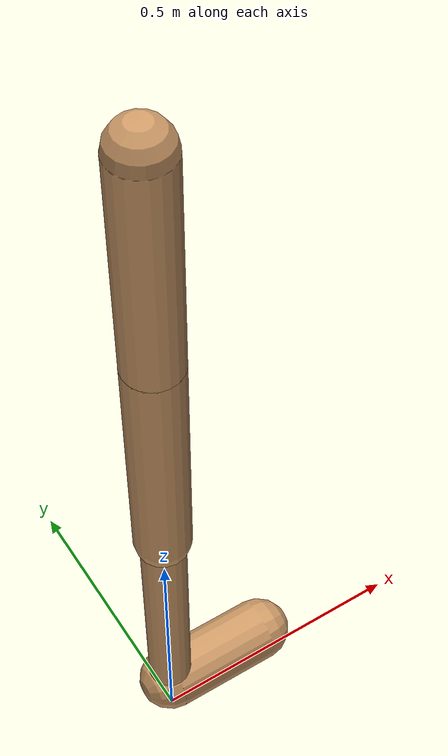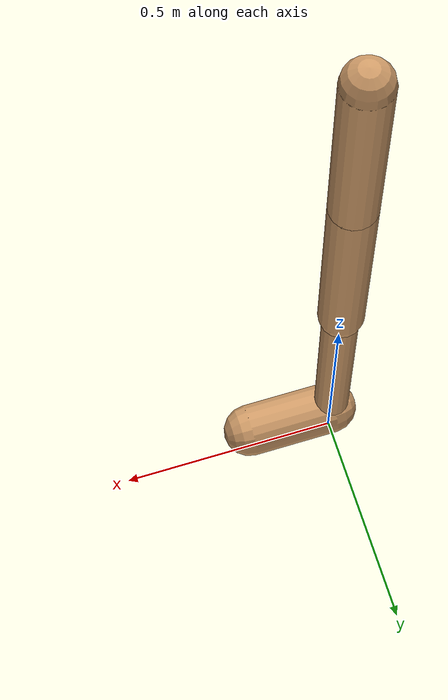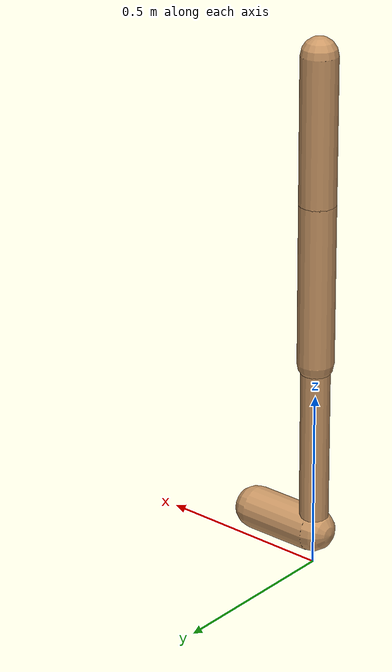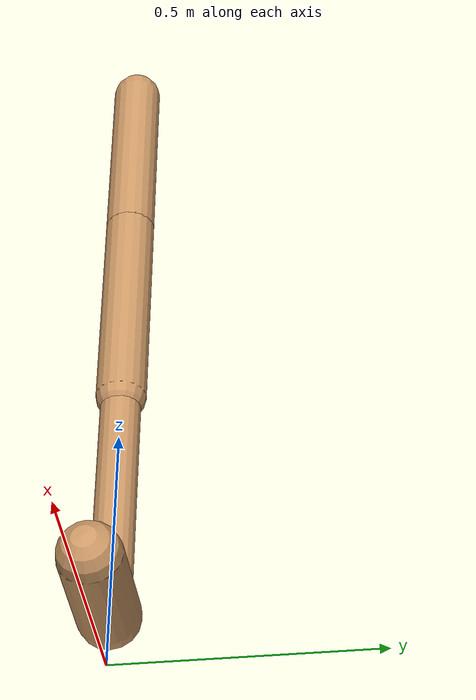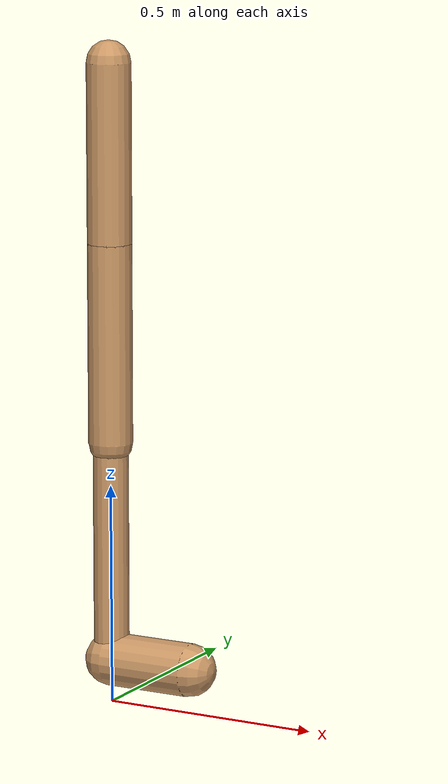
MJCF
<?xml version='1.0' encoding='utf-8'?>
<mujoco model="Walker2d">
  <compiler angle="radian" inertiafromgeom="true" />

  <default>
    <joint armature="0.01" damping="0.1" limited="true" />
    <geom conaffinity="0" condim="3" contype="1" density="1000"
          friction="0.7 0.1 0.1" rgba="0.8 0.6 0.4 1" />
  </default>

  <option integrator="RK4" />

  <worldbody>
    <body name="base" pos="0 0 1.25">
      <!-- IMU site for gyro/accelerometer sensors (at body origin) -->
      <site name="imu" pos="0 0 0" />

      <!-- Body-mounted camera (pointing +X = forward for Walker2d) -->
      <camera name="camera_1_cam" fovy="90.0"
              pos="0 0 0.20" xyaxes="0 -1 0 0 0 1" />

      <!-- Root joints: free 2D movement (slide X, slide Z, rotate Y) -->
      <joint armature="0" axis="1 0 0" damping="0" limited="false"
             name="rootx" pos="0 0 0" stiffness="0" type="slide" />
      <joint armature="0" axis="0 0 1" damping="0" limited="false"
             name="rootz" pos="0 0 0" ref="1.25" stiffness="0" type="slide" />
      <joint armature="0" axis="0 1 0" damping="0" limited="false"
             name="rooty" pos="0 0 0" stiffness="0" type="hinge" />

      <geom friction="0.9" fromto="0 0 0.20 0 0 -0.20"
            name="torso_geom" size="0.05" type="capsule" />

      <!-- Right leg -->
      <body name="thigh" pos="0 0 -0.20">
        <joint axis="0 -1 0" name="thigh_joint" pos="0 0 0"
               range="-2.618 0" type="hinge" />
        <geom friction="0.9" fromto="0 0 0 0 0 -0.45"
              name="thigh_geom" size="0.05" type="capsule" />

        <body name="leg" pos="0 0 -0.70">
          <joint axis="0 -1 0" name="leg_joint" pos="0 0 0.25"
                 range="-2.618 0" type="hinge" />
          <geom friction="0.9" fromto="0 0 0.25 0 0 -0.25"
                name="leg_geom" size="0.04" type="capsule" />

          <body name="foot" pos="0.2 0 -0.25">
            <joint axis="0 -1 0" name="foot_joint" pos="-0.2 0 0"
                   range="-0.785 0.785" type="hinge" />
            <geom friction="0.9" fromto="-0.2 0 0 0 0 0"
                  name="right_foot" size="0.06" type="capsule" />
          </body>
        </body>
      </body>

      <!-- Left leg -->
      <body name="thigh_left" pos="0 0 -0.20">
        <joint axis="0 -1 0" name="thigh_left_joint" pos="0 0 0"
               range="-2.618 0" type="hinge" />
        <geom friction="0.9" fromto="0 0 0 0 0 -0.45"
              name="thigh_left_geom" size="0.05" type="capsule" />

        <body name="leg_left" pos="0 0 -0.70">
          <joint axis="0 -1 0" name="leg_left_joint" pos="0 0 0.25"
                 range="-2.618 0" type="hinge" />
          <geom friction="0.9" fromto="0 0 0.25 0 0 -0.25"
                name="leg_left_geom" size="0.04" type="capsule" />

          <body name="foot_left" pos="0.2 0 -0.25">
            <joint axis="0 -1 0" name="foot_left_joint" pos="-0.2 0 0"
                   range="-0.785 0.785" type="hinge" />
            <geom friction="0.9" fromto="-0.2 0 0 0 0 0"
                  name="left_foot" size="0.06" type="capsule" />
          </body>
        </body>
      </body>
    </body>
  </worldbody>

  <contact>
    <!-- Exclude adjacent body pairs from collision -->
    <exclude body1="base" body2="thigh" />
    <exclude body1="base" body2="thigh_left" />
    <exclude body1="thigh" body2="leg" />
    <exclude body1="leg" body2="foot" />
    <exclude body1="thigh_left" body2="leg_left" />
    <exclude body1="leg_left" body2="foot_left" />
    <!-- Exclude overlapping left/right thighs -->
    <exclude body1="thigh" body2="thigh_left" />
  </contact>

  <actuator>
    <!-- Torque motors (canonical Walker2d control) -->
    <motor name="thigh_motor" ctrllimited="true" ctrlrange="-1.0 1.0"
           gear="100" joint="thigh_joint" />
    <motor name="leg_motor" ctrllimited="true" ctrlrange="-1.0 1.0"
           gear="100" joint="leg_joint" />
    <motor name="foot_motor" ctrllimited="true" ctrlrange="-1.0 1.0"
           gear="100" joint="foot_joint" />
    <motor name="thigh_left_motor" ctrllimited="true" ctrlrange="-1.0 1.0"
           gear="100" joint="thigh_left_joint" />
    <motor name="leg_left_motor" ctrllimited="true" ctrlrange="-1.0 1.0"
           gear="100" joint="leg_left_joint" />
    <motor name="foot_left_motor" ctrllimited="true" ctrlrange="-1.0 1.0"
           gear="100" joint="foot_left_joint" />
  </actuator>

  <sensor>
    <!-- Joint position sensors (6) -->
    <jointpos name="thigh_pos" joint="thigh_joint" />
    <jointpos name="leg_pos" joint="leg_joint" />
    <jointpos name="foot_pos" joint="foot_joint" />
    <jointpos name="thigh_left_pos" joint="thigh_left_joint" />
    <jointpos name="leg_left_pos" joint="leg_left_joint" />
    <jointpos name="foot_left_pos" joint="foot_left_joint" />
    <!-- Joint velocity sensors (6) -->
    <jointvel name="thigh_vel" joint="thigh_joint" />
    <jointvel name="leg_vel" joint="leg_joint" />
    <jointvel name="foot_vel" joint="foot_joint" />
    <jointvel name="thigh_left_vel" joint="thigh_left_joint" />
    <jointvel name="leg_left_vel" joint="leg_left_joint" />
    <jointvel name="foot_left_vel" joint="foot_left_joint" />
    <!-- IMU sensors (3 + 3 = 6) -->
    <gyro name="torso_gyro" site="imu" />
    <accelerometer name="torso_accel" site="imu" />
  </sensor>
</mujoco>
